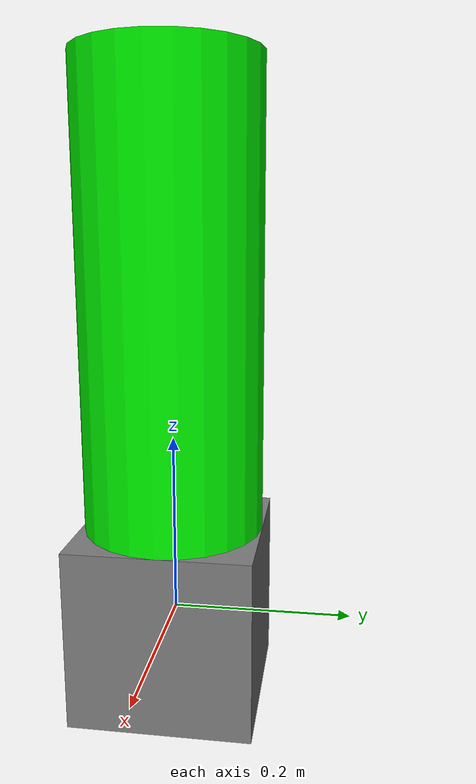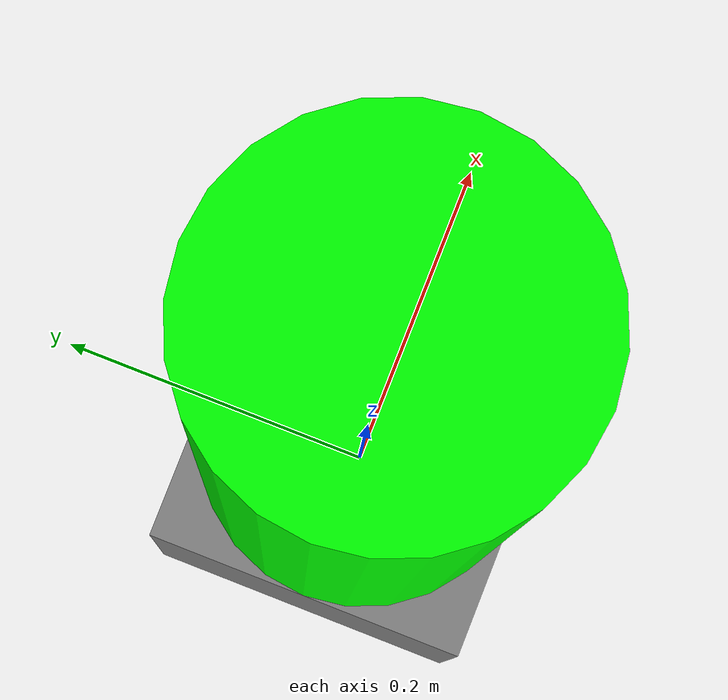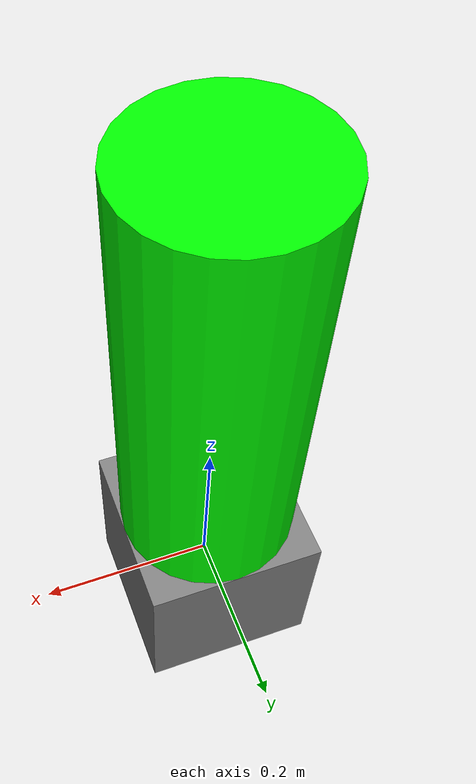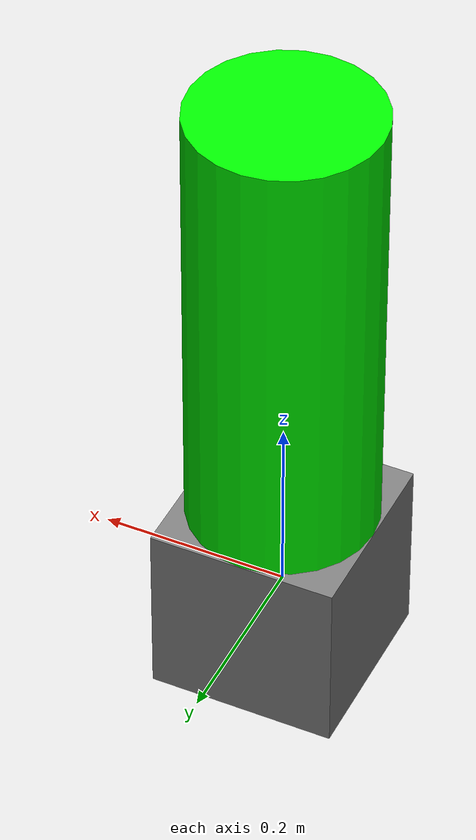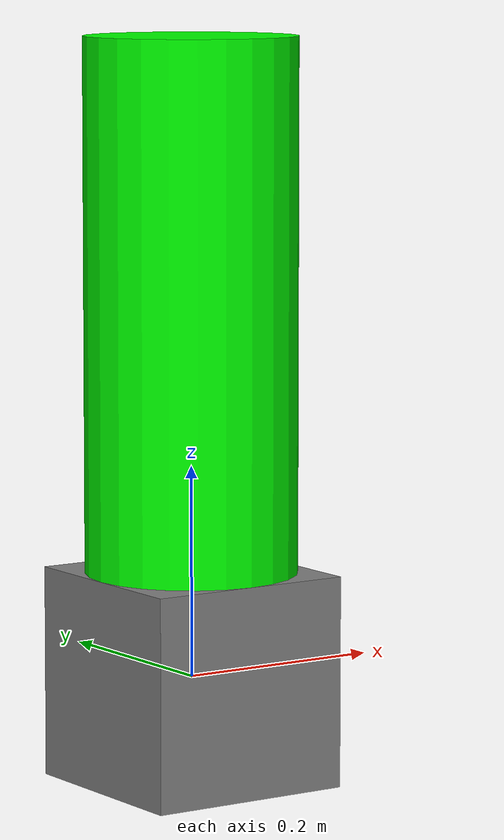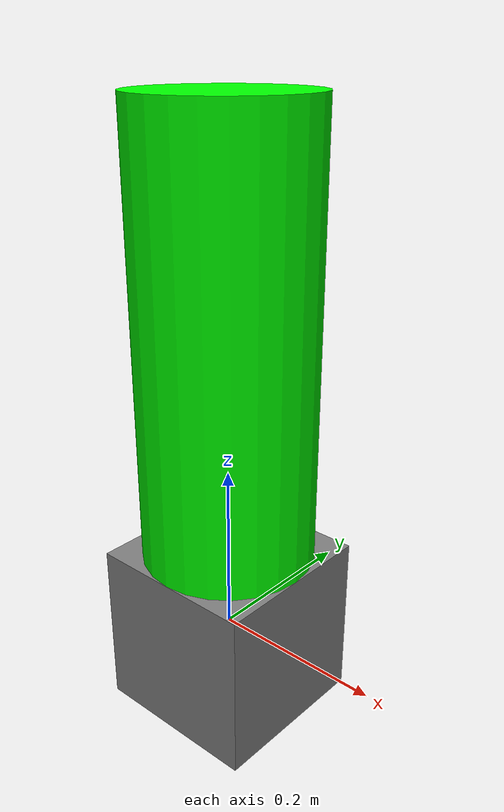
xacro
<robot name="simple_robot" xmlns:xacro="http://www.ros.org/wiki/xacro">
  <link name="base_link"> <!-- Each link should have a name to distinguish and refer to them -->
    <visual>
      <origin xyz="0 0 0" rpy="0 0 0"/>
      <geometry>
        <box size="0.2 0.2 0.2"/> <!-- This specifies the shape of the link -->
      </geometry>
      <material name="base_material">
        <color rgba="0.5 0.5 0.5 1"/> <!-- This specifies the color of the link -->
      </material>
    </visual>
  </link>

  <link name="link_1">
    <visual>
      <origin xyz="0 0 0.3" rpy="0 0 0"/>
      <geometry>
        <cylinder length="0.6" radius="0.1"/>
      </geometry>
      <material name="link1_material">
        <color rgba="0 1 0 1"/>
      </material>
    </visual>
  </link>

  <joint name="base_to_link_1" type="continuous">
    <parent link="base_link"/>
    <child link="link_1"/>
  </joint>
</robot>
